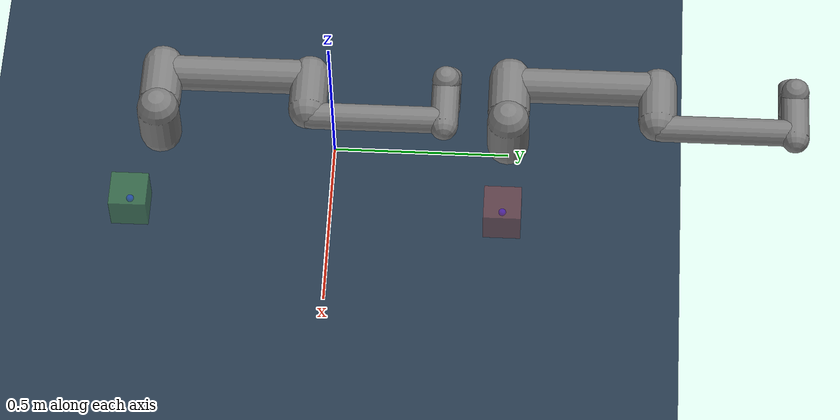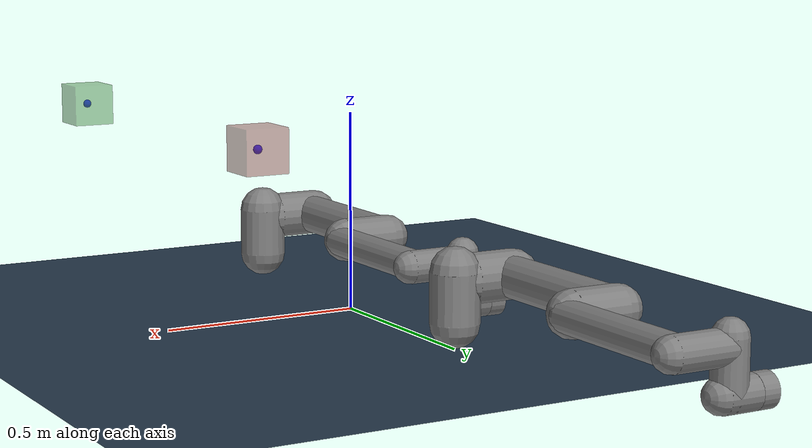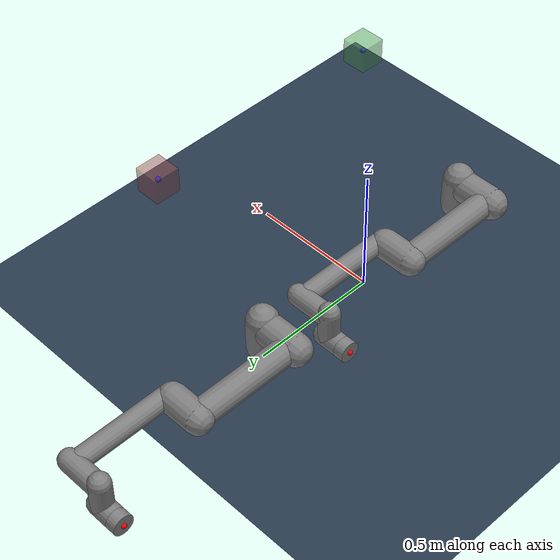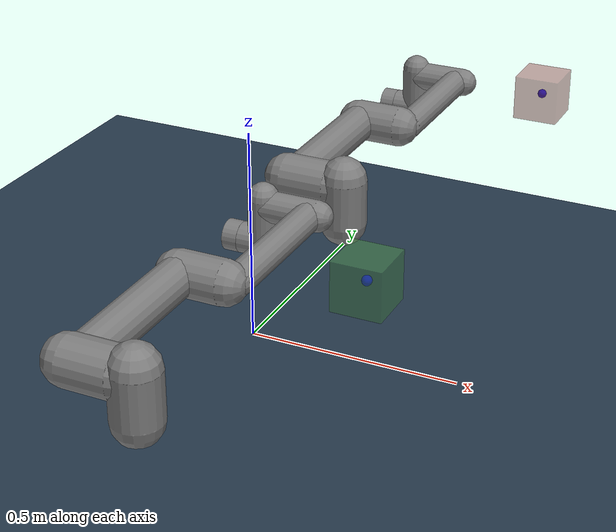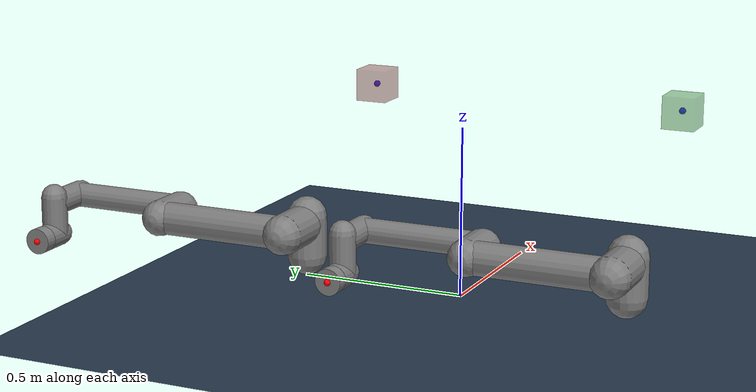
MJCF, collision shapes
<mujoco model="ur5e scene">
  <include file="ur5e_double.xml"/>

  <statistic center="0.3 0 0.3" extent="0.8" meansize="0.08"/>

  <visual>
    <headlight diffuse="0.6 0.6 0.6" ambient="0.1 0.1 0.1" specular="0 0 0"/>
    <global azimuth="120" elevation="-20"/>
  </visual>

  <asset>
    <texture name="grid" type="2d" builtin="checker" rgb1=".2 .3 .4" rgb2=".1 0.15 0.2" width="512" height="512"
      mark="cross" markrgb=".8 .8 .8"/>
    <material name="grid" texture="grid" texrepeat="1 1" texuniform="true"/>
  </asset>

  <worldbody>
    <light pos="0 0 1.5" directional="true"/>
    <geom name="floor" size="1 1 0.01" type="plane" material="grid"/>
    <body name="target" pos="0.5 0.5 .5" quat="0 1 0 0" mocap="true">
      <geom type="box" size=".05 .05 .05" contype="0" conaffinity="0" rgba=".6 .3 .3 .5"/>
      <site type="sphere" size="0.01" rgba="0 0 1 1" group="1"/>
    </body>
    <body name="target__2" pos="0.5 -0.5 .5" quat="0 1 0 0" mocap="true">
      <geom type="box" size=".05 .05 .05" contype="0" conaffinity="0" rgba=".3 .6 .3 .5"/>
      <site type="sphere" size="0.01" rgba="0 0 1 1" group="1"/>
    </body>
  </worldbody>
</mujoco>

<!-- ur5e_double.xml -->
<mujoco model="ur5e">
  <compiler angle="radian" meshdir="assets" autolimits="true"/>

  <option integrator="implicitfast"/>

  <default>
    <default class="ur5e">
      <default class="visual">
        <geom type="mesh" contype="0" conaffinity="0" group="2"/>
      </default>
      <default class="collision">
        <geom type="capsule" group="3"/>
        <default class="eef_collision">
          <geom type="cylinder"/>
        </default>
      </default>
      <joint axis="0 1 0" range="-6.28319 6.28319"/>
      <default class="joint_limited">
        <joint range="-3.1415 3.1415"/>
      </default>
      <default class="position">
        <position ctrlrange="-6.2831 6.2831" kp="2000" kv="100" forcerange="-150 150"/>
        <default class="position_limited">
          <position ctrlrange="-3.1415 3.1415"/>
        </default>
        <default class="position_small">
          <position kp="500" kv="25" forcerange="-28 28"/>
        </default>
      </default>
    </default>
  </default>

  <asset>
    <material name="black" rgba="0.033 0.033 0.033 1"/>
    <material name="jointgray" rgba="0.278 0.278 0.278 1"/>
    <material name="linkgray" rgba="0.82 0.82 0.82 1"/>
    <material name="urblue" rgba="0.49 0.678 0.8 1"/>

    <mesh file="base_0.obj"/>
    <mesh file="base_1.obj"/>
    <mesh file="shoulder_0.obj"/>
    <mesh file="shoulder_1.obj"/>
    <mesh file="shoulder_2.obj"/>
    <mesh file="upperarm_0.obj"/>
    <mesh file="upperarm_1.obj"/>
    <mesh file="upperarm_2.obj"/>
    <mesh file="upperarm_3.obj"/>
    <mesh file="forearm_0.obj"/>
    <mesh file="forearm_1.obj"/>
    <mesh file="forearm_2.obj"/>
    <mesh file="forearm_3.obj"/>
    <mesh file="wrist1_0.obj"/>
    <mesh file="wrist1_1.obj"/>
    <mesh file="wrist1_2.obj"/>
    <mesh file="wrist2_0.obj"/>
    <mesh file="wrist2_1.obj"/>
    <mesh file="wrist2_2.obj"/>
    <mesh file="wrist3.obj"/>
  </asset>

  <worldbody>
    <body name="base" pos="0 0.5 0" quat="1 0 0 1" childclass="ur5e">
      <inertial mass="4" pos="0 0 0" diaginertia="0.00443333156 0.00443333156 0.0072"/>
      <geom mesh="base_0" material="black" class="visual"/>
      <geom mesh="base_1" material="jointgray" class="visual"/>
      <body name="shoulder_link" pos="0 0 0.163">
        <inertial mass="3.7" pos="0 0 0" diaginertia="0.0102675 0.0102675 0.00666"/>
        <joint name="shoulder_pan" axis="0 0 1"/>
        <geom mesh="shoulder_0" material="urblue" class="visual"/>
        <geom mesh="shoulder_1" material="black" class="visual"/>
        <geom mesh="shoulder_2" material="jointgray" class="visual"/>
        <geom class="collision" size="0.06 0.06" pos="0 0 -0.04"/>
        <body name="upper_arm_link" pos="0 0.138 0" quat="1 0 1 0">
          <inertial mass="8.393" pos="0 0 0.2125" diaginertia="0.133886 0.133886 0.0151074"/>
          <joint name="shoulder_lift"/>
          <geom mesh="upperarm_0" material="linkgray" class="visual"/>
          <geom mesh="upperarm_1" material="black" class="visual"/>
          <geom mesh="upperarm_2" material="jointgray" class="visual"/>
          <geom mesh="upperarm_3" material="urblue" class="visual"/>
          <geom class="collision" pos="0 -0.04 0" quat="1 1 0 0" size="0.06 0.06"/>
          <geom class="collision" size="0.05 0.2" pos="0 0 0.2"/>
          <body name="forearm_link" pos="0 -0.131 0.425">
            <inertial mass="2.275" pos="0 0 0.196" diaginertia="0.0311796 0.0311796 0.004095"/>
            <joint name="elbow" class="joint_limited"/>
            <geom mesh="forearm_0" material="urblue" class="visual"/>
            <geom mesh="forearm_1" material="linkgray" class="visual"/>
            <geom mesh="forearm_2" material="black" class="visual"/>
            <geom mesh="forearm_3" material="jointgray" class="visual"/>
            <geom class="collision" pos="0 0.08 0" quat="1 1 0 0" size="0.055 0.06"/>
            <geom class="collision" size="0.038 0.19" pos="0 0 0.2"/>
            <body name="wrist_1_link" pos="0 0 0.392" quat="1 0 1 0">
              <inertial mass="1.219" pos="0 0.127 0" diaginertia="0.0025599 0.0025599 0.0021942"/>
              <joint name="wrist_1"/>
              <geom mesh="wrist1_0" material="black" class="visual"/>
              <geom mesh="wrist1_1" material="urblue" class="visual"/>
              <geom mesh="wrist1_2" material="jointgray" class="visual"/>
              <geom class="collision" pos="0 0.05 0" quat="1 1 0 0" size="0.04 0.07"/>
              <body name="wrist_2_link" pos="0 0.127 0">
                <inertial mass="1.219" pos="0 0 0.1" diaginertia="0.0025599 0.0025599 0.0021942"/>
                <joint name="wrist_2" axis="0 0 1"/>
                <geom mesh="wrist2_0" material="black" class="visual"/>
                <geom mesh="wrist2_1" material="urblue" class="visual"/>
                <geom mesh="wrist2_2" material="jointgray" class="visual"/>
                <geom class="collision" size="0.04 0.06" pos="0 0 0.04"/>
                <geom class="collision" pos="0 0.02 0.1" quat="1 1 0 0" size="0.04 0.04"/>
                <body name="wrist_3_link" pos="0 0 0.1">
                  <inertial mass="0.1879" pos="0 0.0771683 0" quat="1 0 0 1"
                    diaginertia="0.000132134 9.90863e-05 9.90863e-05"/>
                  <joint name="wrist_3"/>
                  <geom material="linkgray" mesh="wrist3" class="visual"/>
                  <geom class="eef_collision" pos="0 0.08 0" quat="1 1 0 0" size="0.04 0.02"/>
                  <site name="attachment_site" size="0.01" pos="0 0.1 0" quat="-1 1 1 1" rgba="1 0 0 1" group="1"/>
                </body>
              </body>
            </body>
          </body>
        </body>
      </body>
    </body>
    <body name="base_second" pos="0 -0.5 0" quat="1 0 0 1" childclass="ur5e">
      <inertial mass="4" pos="0 0 0" diaginertia="0.00443333156 0.00443333156 0.0072"/>
      <geom mesh="base_0" material="black" class="visual"/>
      <geom mesh="base_1" material="jointgray" class="visual"/>
      <body name="shoulder_link__2" pos="0 0 0.163">
        <inertial mass="3.7" pos="0 0 0" diaginertia="0.0102675 0.0102675 0.00666"/>
        <joint name="shoulder_pan__2" axis="0 0 1"/>
        <geom mesh="shoulder_0" material="urblue" class="visual"/>
        <geom mesh="shoulder_1" material="black" class="visual"/>
        <geom mesh="shoulder_2" material="jointgray" class="visual"/>
        <geom class="collision" size="0.06 0.06" pos="0 0 -0.04"/>
        <body name="upper_arm_link__2" pos="0 0.138 0" quat="1 0 1 0">
          <inertial mass="8.393" pos="0 0 0.2125" diaginertia="0.133886 0.133886 0.0151074"/>
          <joint name="shoulder_lift__2"/>
          <geom mesh="upperarm_0" material="linkgray" class="visual"/>
          <geom mesh="upperarm_1" material="black" class="visual"/>
          <geom mesh="upperarm_2" material="jointgray" class="visual"/>
          <geom mesh="upperarm_3" material="urblue" class="visual"/>
          <geom class="collision" pos="0 -0.04 0" quat="1 1 0 0" size="0.06 0.06"/>
          <geom class="collision" size="0.05 0.2" pos="0 0 0.2"/>
          <body name="forearm_link__2" pos="0 -0.131 0.425">
            <inertial mass="2.275" pos="0 0 0.196" diaginertia="0.0311796 0.0311796 0.004095"/>
            <joint name="elbow__2" class="joint_limited"/>
            <geom mesh="forearm_0" material="urblue" class="visual"/>
            <geom mesh="forearm_1" material="linkgray" class="visual"/>
            <geom mesh="forearm_2" material="black" class="visual"/>
            <geom mesh="forearm_3" material="jointgray" class="visual"/>
            <geom class="collision" pos="0 0.08 0" quat="1 1 0 0" size="0.055 0.06"/>
            <geom class="collision" size="0.038 0.19" pos="0 0 0.2"/>
            <body name="wrist_1_link__2" pos="0 0 0.392" quat="1 0 1 0">
              <inertial mass="1.219" pos="0 0.127 0" diaginertia="0.0025599 0.0025599 0.0021942"/>
              <joint name="wrist_1__2"/>
              <geom mesh="wrist1_0" material="black" class="visual"/>
              <geom mesh="wrist1_1" material="urblue" class="visual"/>
              <geom mesh="wrist1_2" material="jointgray" class="visual"/>
              <geom class="collision" pos="0 0.05 0" quat="1 1 0 0" size="0.04 0.07"/>
              <body name="wrist_2_link__2" pos="0 0.127 0">
                <inertial mass="1.219" pos="0 0 0.1" diaginertia="0.0025599 0.0025599 0.0021942"/>
                <joint name="wrist_2__2" axis="0 0 1"/>
                <geom mesh="wrist2_0" material="black" class="visual"/>
                <geom mesh="wrist2_1" material="urblue" class="visual"/>
                <geom mesh="wrist2_2" material="jointgray" class="visual"/>
                <geom class="collision" size="0.04 0.06" pos="0 0 0.04"/>
                <geom class="collision" pos="0 0.02 0.1" quat="1 1 0 0" size="0.04 0.04"/>
                <body name="wrist_3_link__2" pos="0 0 0.1">
                  <inertial mass="0.1879" pos="0 0.0771683 0" quat="1 0 0 1"
                    diaginertia="0.000132134 9.90863e-05 9.90863e-05"/>
                  <joint name="wrist_3__2"/>
                  <geom material="linkgray" mesh="wrist3" class="visual"/>
                  <geom class="eef_collision" pos="0 0.08 0" quat="1 1 0 0" size="0.04 0.02"/>
                  <site name="attachment_site__2" size="0.01" pos="0 0.1 0" quat="-1 1 1 1" rgba="1 0 0 1" group="1"/>
                </body>
              </body>
            </body>
          </body>
        </body>
      </body>
    </body>
  </worldbody>

  <actuator>
    <position class="position" name="shoulder_pan" joint="shoulder_pan"/>
    <position class="position" name="shoulder_lift" joint="shoulder_lift"/>
    <position class="position_limited" name="elbow" joint="elbow"/>
    <position class="position_small" name="wrist_1" joint="wrist_1"/>
    <position class="position_small" name="wrist_2" joint="wrist_2"/>
    <position class="position_small" name="wrist_3" joint="wrist_3"/>

    <position class="position" name="shoulder_pan__2" joint="shoulder_pan__2"/>
    <position class="position" name="shoulder_lift__2" joint="shoulder_lift__2"/>
    <position class="position_limited" name="elbow__2" joint="elbow__2"/>
    <position class="position_small" name="wrist_1__2" joint="wrist_1__2"/>
    <position class="position_small" name="wrist_2__2" joint="wrist_2__2"/>
    <position class="position_small" name="wrist_3__2" joint="wrist_3__2"/>
  </actuator>

  <keyframe>
    <key name="home" qpos="-1.5708 -1.5708 1.5708 -1.5708 -1.5708 0 -1.5708 -1.5708 1.5708 -1.5708 -1.5708 0" ctrl="-1.5708 -1.5708 1.5708 -1.5708 -1.5708 0 -1.5708 -1.5708 1.5708 -1.5708 -1.5708 0"/>
  </keyframe>
</mujoco>
